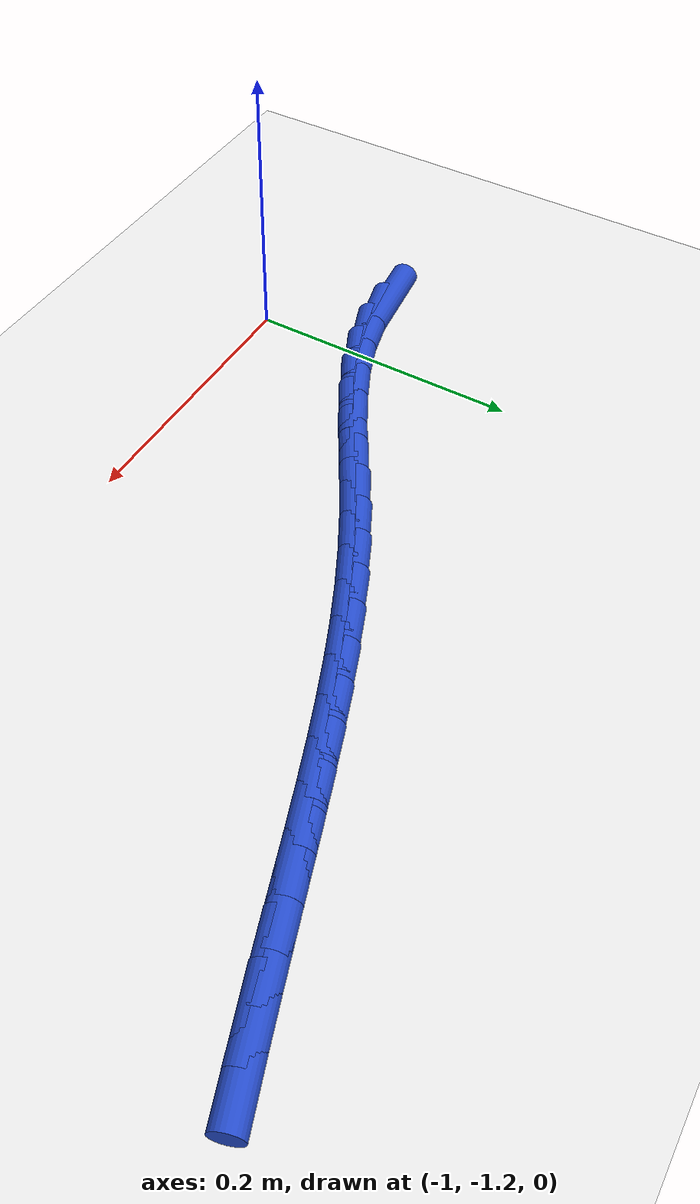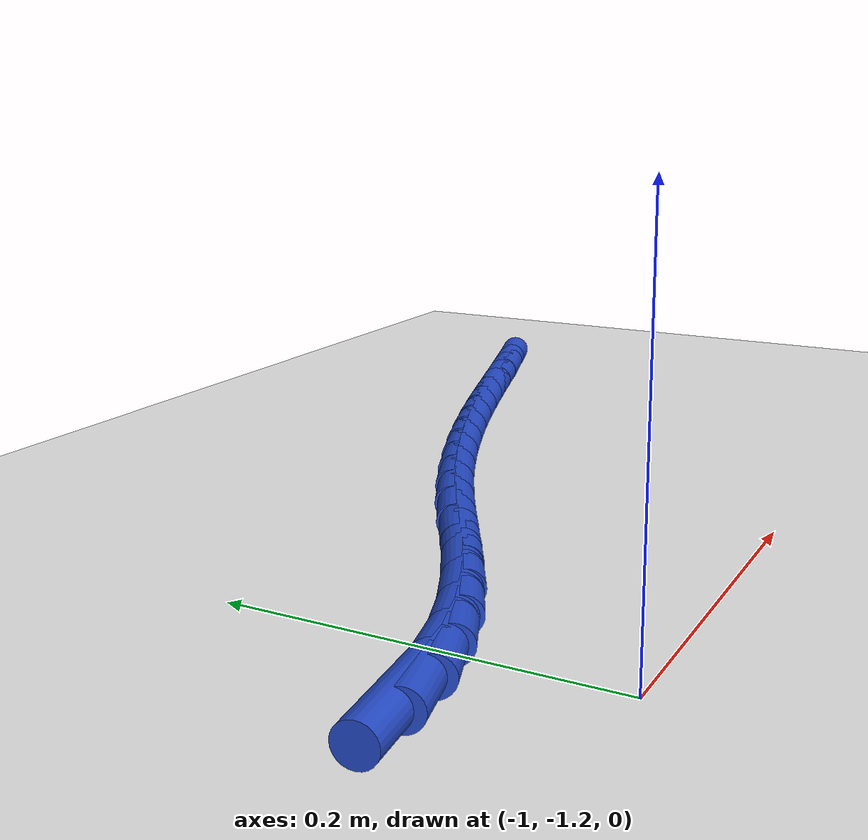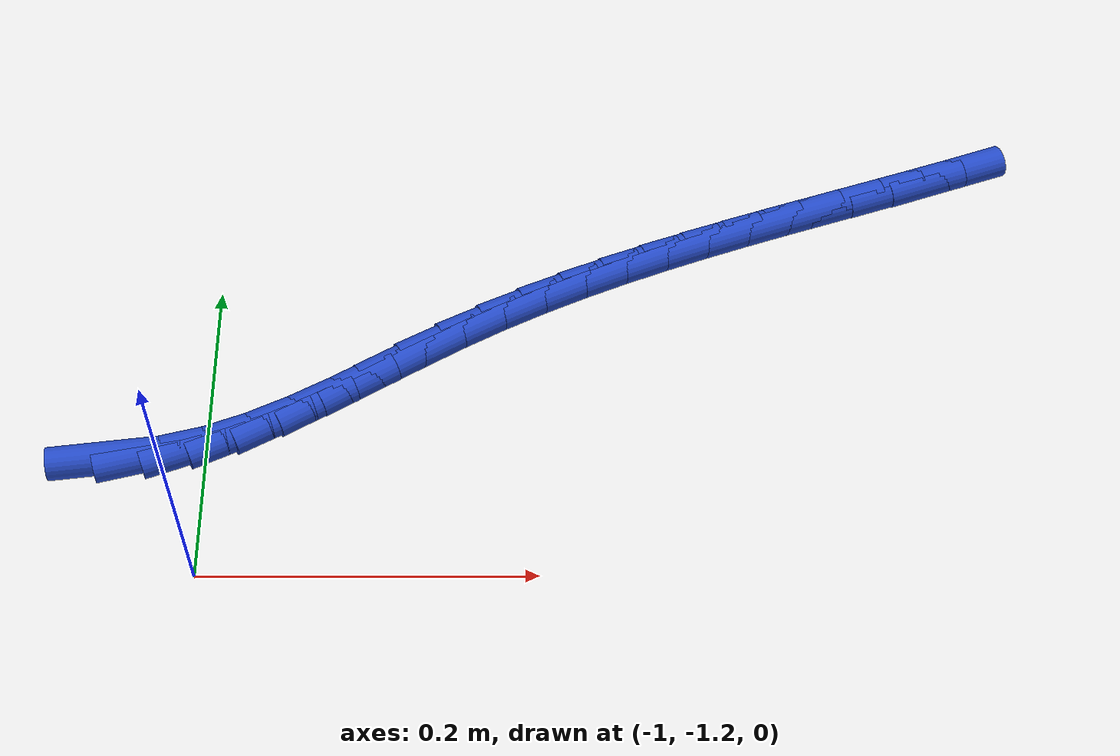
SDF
<sdf version="1.6">
 <world name="default">
  <model name="ground_plane">
   <static>1</static>
   <link name="link">
    <collision name="collision">
     <geometry><plane><normal>0 0 1</normal><size>100 100</size></plane></geometry>
     <surface><friction><ode><mu>100</mu><mu2>50</mu2></ode></friction></surface>
    </collision>
    <visual name="visual">
     <cast_shadows>0</cast_shadows>
     <geometry><plane><normal>0 0 1</normal><size>100 100</size></plane></geometry>
     <material>
      <script><uri>file://media/materials/scripts/gazebo.material</uri><name>Gazebo/WhiteGlow</name></script>
     </material>
    </visual>
   </link>
  </model>
  <model name="line">
   <link name="link_180">
    <pose>-1.052765306992661 -1.1248994548614706 0.01 0 1.57 0.11760667723742453</pose>
    <collision name="collision">
     <geometry><cylinder><radius>0.01</radius><length>0.08</length></cylinder></geometry>
    </collision>
    <visual name="visual">
     <material>
      <script><name>Gazebo/Blue</name><uri>file://media/materials/scripts/gazebo.material</uri></script>
     </material>
     <geometry><cylinder><radius>0.01</radius><length>0.08</length></cylinder></geometry>
    </visual>
   </link>
   <link name="link_181">
    <pose>-1.025873198718613 -1.1217221008266554 0.01 0 1.57 0.24472521174042575</pose>
    <collision name="collision">
     <geometry><cylinder><radius>0.01</radius><length>0.08</length></cylinder></geometry>
    </collision>
    <visual name="visual">
     <material>
      <script><name>Gazebo/Blue</name><uri>file://media/materials/scripts/gazebo.material</uri></script>
     </material>
     <geometry><cylinder><radius>0.01</radius><length>0.08</length></cylinder></geometry>
    </visual>
   </link>
   <link name="link_182">
    <pose>-0.9996294576451898 -1.1151682323427747 0.01 0 1.57 0.3561655671670095</pose>
    <collision name="collision">
     <geometry><cylinder><radius>0.01</radius><length>0.08</length></cylinder></geometry>
    </collision>
    <visual name="visual">
     <material>
      <script><name>Gazebo/Blue</name><uri>file://media/materials/scripts/gazebo.material</uri></script>
     </material>
     <geometry><cylinder><radius>0.01</radius><length>0.08</length></cylinder></geometry>
    </visual>
   </link>
   <link name="link_183">
    <pose>-0.9739842633835055 -1.1056274135982198 0.01 0 1.57 0.4400599700697018</pose>
    <collision name="collision">
     <geometry><cylinder><radius>0.01</radius><length>0.08</length></cylinder></geometry>
    </collision>
    <visual name="visual">
     <material>
      <script><name>Gazebo/Blue</name><uri>file://media/materials/scripts/gazebo.material</uri></script>
     </material>
     <geometry><cylinder><radius>0.01</radius><length>0.08</length></cylinder></geometry>
    </visual>
   </link>
   <link name="link_184">
    <pose>-0.9487948824149153 -1.0937668980802322 0.01 0 1.57 0.4975552781114386</pose>
    <collision name="collision">
     <geometry><cylinder><radius>0.01</radius><length>0.08</length></cylinder></geometry>
    </collision>
    <visual name="visual">
     <material>
      <script><name>Gazebo/Blue</name><uri>file://media/materials/scripts/gazebo.material</uri></script>
     </material>
     <geometry><cylinder><radius>0.01</radius><length>0.08</length></cylinder></geometry>
    </visual>
   </link>
   <link name="link_185">
    <pose>-0.9239180618853383 -1.0802554914129052 0.01 0 1.57 0.5305102492379731</pose>
    <collision name="collision">
     <geometry><cylinder><radius>0.01</radius><length>0.08</length></cylinder></geometry>
    </collision>
    <visual name="visual">
     <material>
      <script><name>Gazebo/Blue</name><uri>file://media/materials/scripts/gazebo.material</uri></script>
     </material>
     <geometry><cylinder><radius>0.01</radius><length>0.08</length></cylinder></geometry>
    </visual>
   </link>
   <link name="link_186">
    <pose>-0.8992105489406955 -1.0657619992203347 0.01 0 1.57 0.5403568516222439</pose>
    <collision name="collision">
     <geometry><cylinder><radius>0.01</radius><length>0.08</length></cylinder></geometry>
    </collision>
    <visual name="visual">
     <material>
      <script><name>Gazebo/Blue</name><uri>file://media/materials/scripts/gazebo.material</uri></script>
     </material>
     <geometry><cylinder><radius>0.01</radius><length>0.08</length></cylinder></geometry>
    </visual>
   </link>
   <link name="link_187">
    <pose>-0.8745290907269058 -1.0509552271266145 0.01 0 1.57 0.5276339690339525</pose>
    <collision name="collision">
     <geometry><cylinder><radius>0.01</radius><length>0.08</length></cylinder></geometry>
    </collision>
    <visual name="visual">
     <material>
      <script><name>Gazebo/Blue</name><uri>file://media/materials/scripts/gazebo.material</uri></script>
     </material>
     <geometry><cylinder><radius>0.01</radius><length>0.08</length></cylinder></geometry>
    </visual>
   </link>
   <link name="link_188">
    <pose>-0.849730434389889 -1.0365039807558394 0.01 0 1.57 0.49491961804065954</pose>
    <collision name="collision">
     <geometry><cylinder><radius>0.01</radius><length>0.08</length></cylinder></geometry>
    </collision>
    <visual name="visual">
     <material>
      <script><name>Gazebo/Blue</name><uri>file://media/materials/scripts/gazebo.material</uri></script>
     </material>
     <geometry><cylinder><radius>0.01</radius><length>0.08</length></cylinder></geometry>
    </visual>
   </link>
   <link name="link_189">
    <pose>-0.824689699963287 -1.0229888932197921 0.01 0 1.57 0.4592421996501488</pose>
    <collision name="collision">
     <geometry><cylinder><radius>0.01</radius><length>0.08</length></cylinder></geometry>
    </collision>
    <visual name="visual">
     <material>
      <script><name>Gazebo/Blue</name><uri>file://media/materials/scripts/gazebo.material</uri></script>
     </material>
     <geometry><cylinder><radius>0.01</radius><length>0.08</length></cylinder></geometry>
    </visual>
   </link>
   <link name="link_190">
    <pose>-0.799388919094691 -1.010477522835503 0.01 0 1.57 0.4271463603493073</pose>
    <collision name="collision">
     <geometry><cylinder><radius>0.01</radius><length>0.08</length></cylinder></geometry>
    </collision>
    <visual name="visual">
     <material>
      <script><name>Gazebo/Blue</name><uri>file://media/materials/scripts/gazebo.material</uri></script>
     </material>
     <geometry><cylinder><radius>0.01</radius><length>0.08</length></cylinder></geometry>
    </visual>
   </link>
   <link name="link_191">
    <pose>-0.7738486920539152 -0.998852334952074 0.01 0 1.57 0.39888134347536175</pose>
    <collision name="collision">
     <geometry><cylinder><radius>0.01</radius><length>0.08</length></cylinder></geometry>
    </collision>
    <visual name="visual">
     <material>
      <script><name>Gazebo/Blue</name><uri>file://media/materials/scripts/gazebo.material</uri></script>
     </material>
     <geometry><cylinder><radius>0.01</radius><length>0.08</length></cylinder></geometry>
    </visual>
   </link>
   <link name="link_192">
    <pose>-0.748089671005328 -0.9879955458737499 0.01 0 1.57 0.37462450920577717</pose>
    <collision name="collision">
     <geometry><cylinder><radius>0.01</radius><length>0.08</length></cylinder></geometry>
    </collision>
    <visual name="visual">
     <material>
      <script><name>Gazebo/Blue</name><uri>file://media/materials/scripts/gazebo.material</uri></script>
     </material>
     <geometry><cylinder><radius>0.01</radius><length>0.08</length></cylinder></geometry>
    </visual>
   </link>
   <link name="link_193">
    <pose>-0.7221325081132997 -0.9777893719047754 0.01 0 1.57 0.35449841979728786</pose>
    <collision name="collision">
     <geometry><cylinder><radius>0.01</radius><length>0.08</length></cylinder></geometry>
    </collision>
    <visual name="visual">
     <material>
      <script><name>Gazebo/Blue</name><uri>file://media/materials/scripts/gazebo.material</uri></script>
     </material>
     <geometry><cylinder><radius>0.01</radius><length>0.08</length></cylinder></geometry>
    </visual>
   </link>
   <link name="link_194">
    <pose>-0.6959978555421988 -0.968116029349395 0.01 0 1.57 0.3385803267265402</pose>
    <collision name="collision">
     <geometry><cylinder><radius>0.01</radius><length>0.08</length></cylinder></geometry>
    </collision>
    <visual name="visual">
     <material>
      <script><name>Gazebo/Blue</name><uri>file://media/materials/scripts/gazebo.material</uri></script>
     </material>
     <geometry><cylinder><radius>0.01</radius><length>0.08</length></cylinder></geometry>
    </visual>
   </link>
   <link name="link_195">
    <pose>-0.6697063654563945 -0.9588577345118532 0.01 0 1.57 0.3269113888125774</pose>
    <collision name="collision">
     <geometry><cylinder><radius>0.01</radius><length>0.08</length></cylinder></geometry>
    </collision>
    <visual name="visual">
     <material>
      <script><name>Gazebo/Blue</name><uri>file://media/materials/scripts/gazebo.material</uri></script>
     </material>
     <geometry><cylinder><radius>0.01</radius><length>0.08</length></cylinder></geometry>
    </visual>
   </link>
   <link name="link_196">
    <pose>-0.6432786900202555 -0.9498967036963941 0.01 0 1.57 0.31950472045266937</pose>
    <collision name="collision">
     <geometry><cylinder><radius>0.01</radius><length>0.08</length></cylinder></geometry>
    </collision>
    <visual name="visual">
     <material>
      <script><name>Gazebo/Blue</name><uri>file://media/materials/scripts/gazebo.material</uri></script>
     </material>
     <geometry><cylinder><radius>0.01</radius><length>0.08</length></cylinder></geometry>
    </visual>
   </link>
   <link name="link_197">
    <pose>-0.6167354813981509 -0.941115153207263 0.01 0 1.57 0.3163516921569086</pose>
    <collision name="collision">
     <geometry><cylinder><radius>0.01</radius><length>0.08</length></cylinder></geometry>
    </collision>
    <visual name="visual">
     <material>
      <script><name>Gazebo/Blue</name><uri>file://media/materials/scripts/gazebo.material</uri></script>
     </material>
     <geometry><cylinder><radius>0.01</radius><length>0.08</length></cylinder></geometry>
    </visual>
   </link>
   <link name="link_198">
    <pose>-0.5900973917544495 -0.9323952993487036 0.01 0 1.57 0.31742617235057347</pose>
    <collision name="collision">
     <geometry><cylinder><radius>0.01</radius><length>0.08</length></cylinder></geometry>
    </collision>
    <visual name="visual">
     <material>
      <script><name>Gazebo/Blue</name><uri>file://media/materials/scripts/gazebo.material</uri></script>
     </material>
     <geometry><cylinder><radius>0.01</radius><length>0.08</length></cylinder></geometry>
    </visual>
   </link>
   <link name="link_199">
    <pose>-0.5633850732535207 -0.9236193584249606 0.01 0 1.57 0.32268660121496845</pose>
    <collision name="collision">
     <geometry><cylinder><radius>0.01</radius><length>0.08</length></cylinder></geometry>
    </collision>
    <visual name="visual">
     <material>
      <script><name>Gazebo/Blue</name><uri>file://media/materials/scripts/gazebo.material</uri></script>
     </material>
     <geometry><cylinder><radius>0.01</radius><length>0.08</length></cylinder></geometry>
    </visual>
   </link>
   <link name="link_200">
    <pose>-0.5366191780597322 -0.9146695467402783 0.01 0 1.57 0.33207593748978576</pose>
    <collision name="collision">
     <geometry><cylinder><radius>0.01</radius><length>0.08</length></cylinder></geometry>
    </collision>
    <visual name="visual">
     <material>
      <script><name>Gazebo/Blue</name><uri>file://media/materials/scripts/gazebo.material</uri></script>
     </material>
     <geometry><cylinder><radius>0.01</radius><length>0.08</length></cylinder></geometry>
    </visual>
   </link>
  </model>
 </world>
</sdf>
